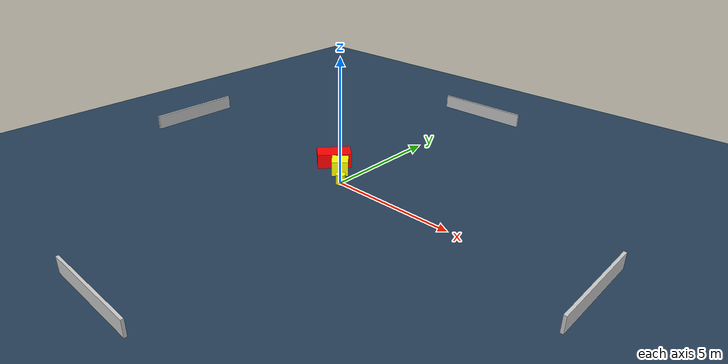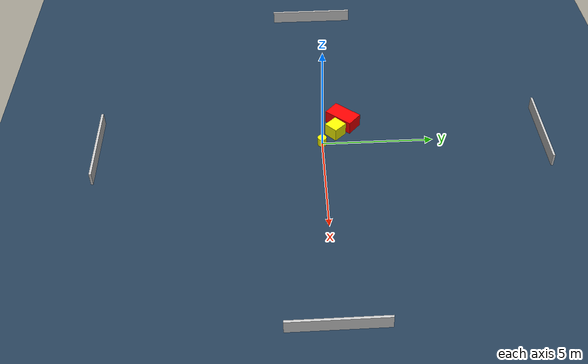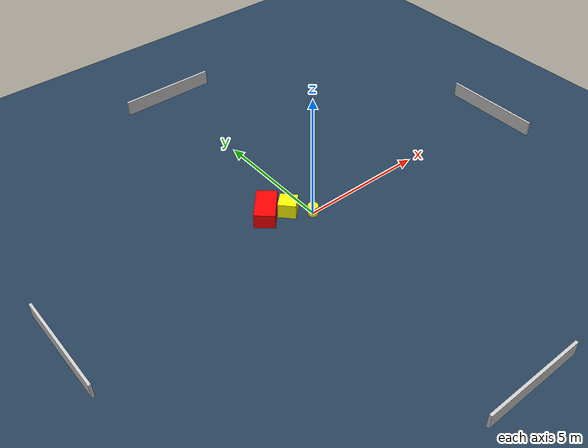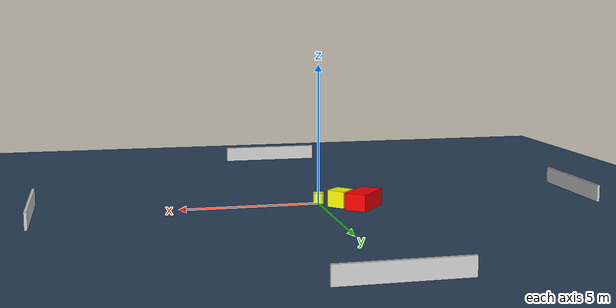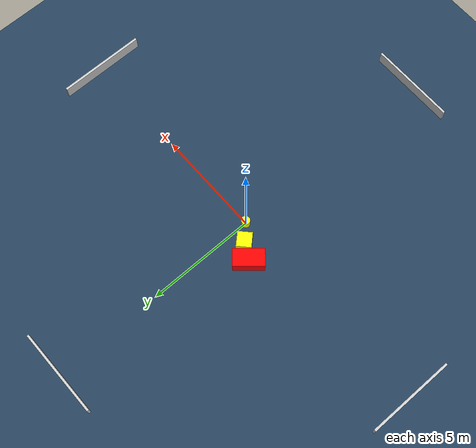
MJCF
<?xml version="1.0" ?>
<mujoco model="generated_environment">
  <option timestep="0.01" integrator="RK4" cone="elliptic"/>
  <default>
    <geom density="1"/>
  </default>
  <asset>
    <texture builtin="gradient" height="3072" name="skybox" rgb1="0.3 0.5 0.7" rgb2="0 0 0" type="skybox" width="512"/>
    <texture builtin="checker" height="300" name="groundplane" rgb1="0.2 0.3 0.4" rgb2="0.1 0.2 0.3" type="2d" width="300"/>
    <material name="groundplane" reflectance="0.2" texrepeat="5 5" texture="groundplane"/>
  </asset>
  <worldbody>
    <light dir="0 0 -1" directional="true" pos="0 0 1.5"/>
    <geom condim="3" friction="0.5 0.005 0.001" material="groundplane" name="floor" pos="0 0 0" size="0 0 0.05" type="plane"/>
    <body name="walls">
      <geom name="wall_1" condim="4" pos="-10.0 0.0 0.3" rgba="0.800000011920929 0.800000011920929 0.800000011920929 1.0" size="0.05 2.0 0.3" type="box"/>
      <geom name="wall_2" condim="4" pos="10.0 0.0 0.3" rgba="0.800000011920929 0.800000011920929 0.800000011920929 1.0" size="0.05 2.0 0.3" type="box"/>
      <geom name="wall_3" condim="4" pos="0.0 -10.0 0.3" rgba="0.800000011920929 0.800000011920929 0.800000011920929 1.0" size="2.0 0.05 0.3" type="box"/>
      <geom name="wall_4" condim="4" pos="0.0 10.0 0.3" rgba="0.800000011920929 0.800000011920929 0.800000011920929 1.0" size="2.0 0.05 0.3" type="box"/>
    </body>
    <body name="robot">
      <joint name="joint_x" type="slide" pos="0 0 0" axis="1 0 0"/>
      <joint name="joint_y" type="slide" pos="0 0 0" axis="0 1 0"/>
      <geom name="robot" type="cylinder" pos="0.0 0.0 0.2" size="0.2 0.2 0.0" mass="5.0" friction="1.0 0.005 0.0001" condim="4" rgba="1.0 1.0 0.0 1.0"/>
    </body>
    <body name="obstacle_1_movable">
      <geom name="obstacle_1_movable" condim="4" pos="-0.659082779539404 0.6488845714632979 0.3" euler="0 0 43.19691490387284" friction="0.0 0.005 0.001" rgba="1.0 1.0 0.0 1.0" size="0.3309644224536886 0.33903806369649103 0.3" type="box" mass="0.1"/>
      <joint type="free"/>
    </body>
    <body name="obstacle_2_static">
      <geom name="obstacle_2_static" condim="4" pos="-1.3879272782814205 1.0359465490732014 0.3" euler="0 0 48.85693511013525" friction="0.0 0.005 0.001" rgba="1.0 0.0 0.0 1.0" size="0.6937259789818623 0.39527724782273566 0.3" type="box"/>
    </body>
  </worldbody>
  <actuator>
    <motor name="actuator_x" joint="joint_x" gear="1" ctrlrange="-1 1"/>
    <motor name="actuator_y" joint="joint_y" gear="1" ctrlrange="-1 1"/>
  </actuator>
</mujoco>
